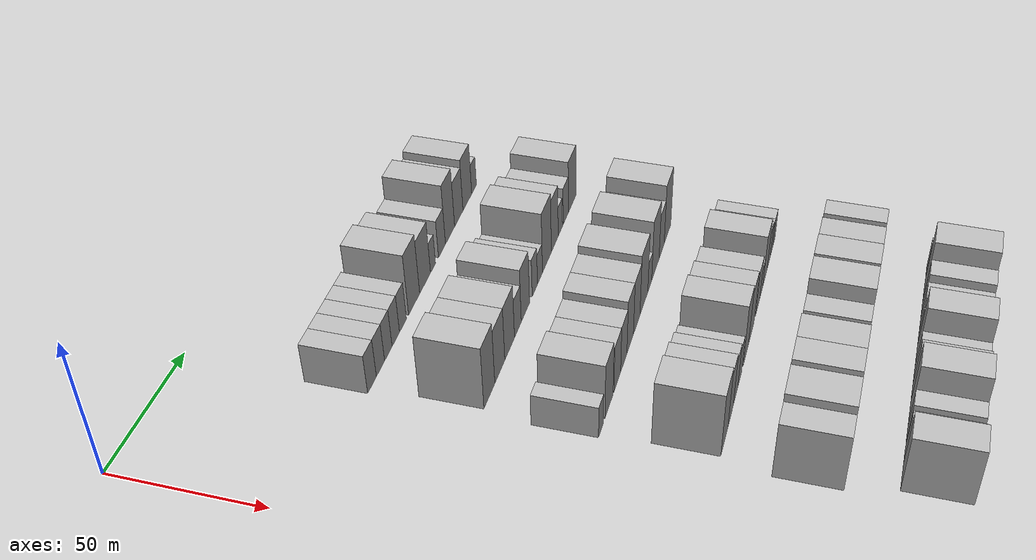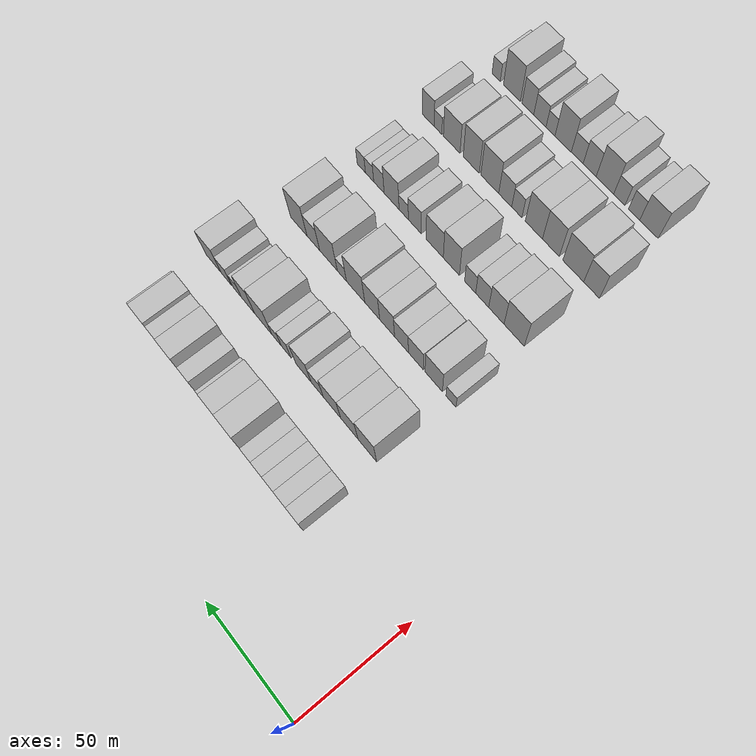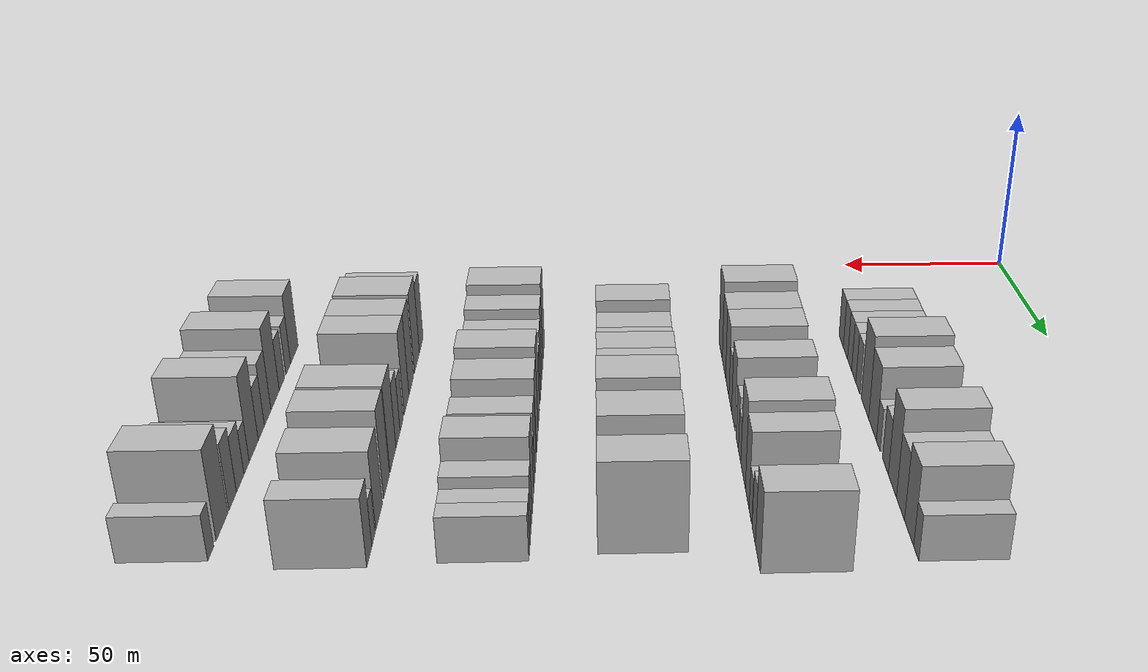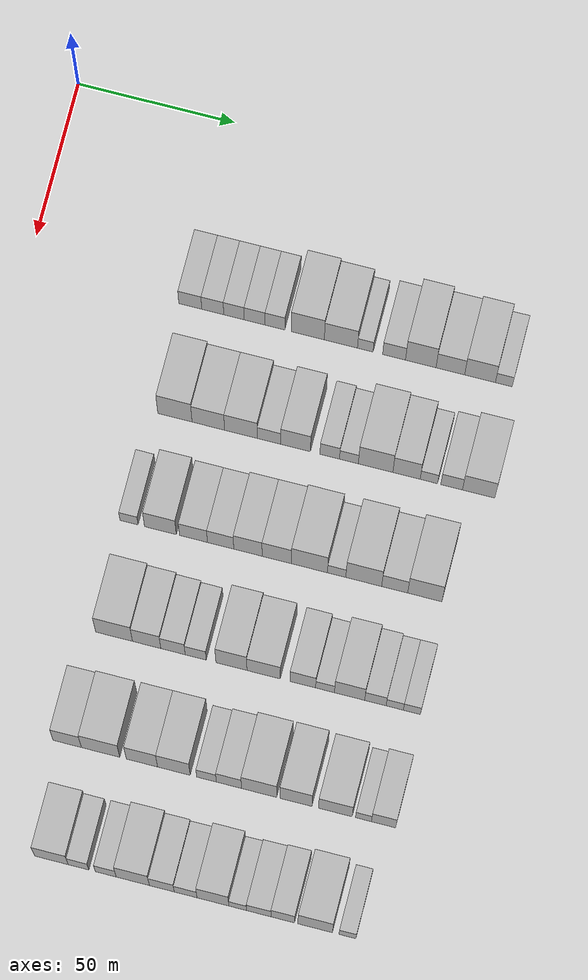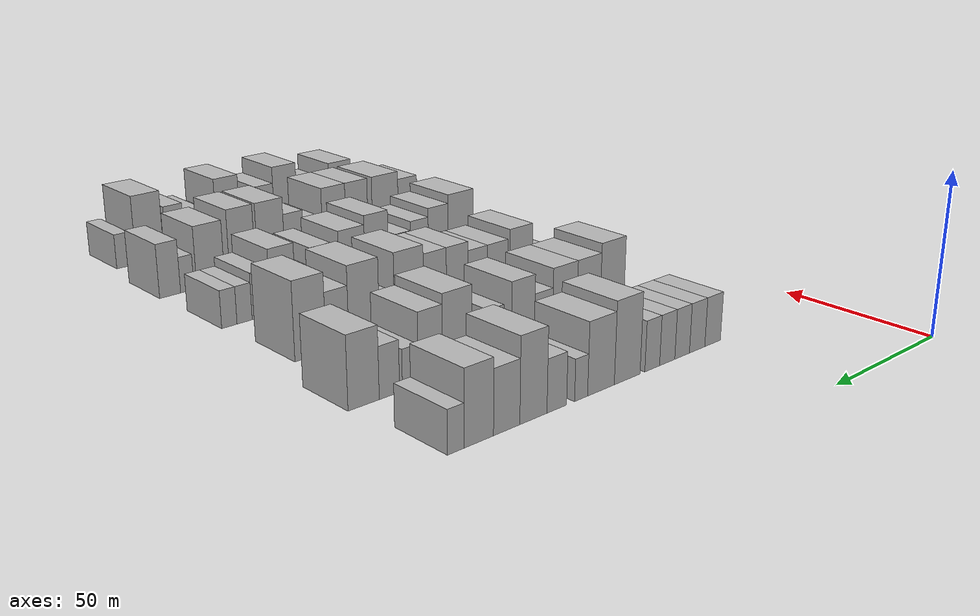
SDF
<sdf version="1.6">
 <world name="default">
  <model name="building_74">
   <static>1</static>
   <pose>50.0000 51.4903 0 0.000000 0.000000 0.000000</pose>
   <link name="link">
    <pose>0 0 7.50 0 0 0</pose>
    <collision name="collision"><geometry><box><size>20.0000 7.2526 15.0000</size></box></geometry></collision>
    <visual name="visual">
     <cast_shadows>0</cast_shadows>
     <geometry><box><size>20.0000 7.2526 15.0000</size></box></geometry>
     <material>
      <script>
       <uri>model://HANNAS_wall/materials/scripts</uri>
       <uri>model://HANNAS_wall/materials/textures</uri>
       <name>vrc/HANNAS_wall</name>
      </script>
     </material>
    </visual>
   </link>
  </model>
  <model name="building_75">
   <static>1</static>
   <pose>50.0000 58.5989 0 0.000000 0.000000 0.000000</pose>
   <link name="link">
    <pose>0 0 7.50 0 0 0</pose>
    <collision name="collision"><geometry><box><size>20.0000 6.9646 15.0000</size></box></geometry></collision>
    <visual name="visual">
     <cast_shadows>0</cast_shadows>
     <geometry><box><size>20.0000 6.9646 15.0000</size></box></geometry>
     <material>
      <script>
       <uri>model://HANNAS_wall/materials/scripts</uri>
       <uri>model://HANNAS_wall/materials/textures</uri>
       <name>vrc/HANNAS_wall</name>
      </script>
     </material>
    </visual>
   </link>
  </model>
  <model name="building_76">
   <static>1</static>
   <pose>50.0000 65.3261 0 0.000000 0.000000 0.000000</pose>
   <link name="link">
    <pose>0 0 7.50 0 0 0</pose>
    <collision name="collision"><geometry><box><size>20.0000 6.4899 15.0000</size></box></geometry></collision>
    <visual name="visual">
     <cast_shadows>0</cast_shadows>
     <geometry><box><size>20.0000 6.4899 15.0000</size></box></geometry>
     <material>
      <script>
       <uri>model://HANNAS_wall/materials/scripts</uri>
       <uri>model://HANNAS_wall/materials/textures</uri>
       <name>vrc/HANNAS_wall</name>
      </script>
     </material>
    </visual>
   </link>
  </model>
  <model name="building_77">
   <static>1</static>
   <pose>50.0000 71.8631 0 0.000000 0.000000 0.000000</pose>
   <link name="link">
    <pose>0 0 7.50 0 0 0</pose>
    <collision name="collision"><geometry><box><size>20.0000 6.5840 15.0000</size></box></geometry></collision>
    <visual name="visual">
     <cast_shadows>0</cast_shadows>
     <geometry><box><size>20.0000 6.5840 15.0000</size></box></geometry>
     <material>
      <script>
       <uri>model://HANNAS_wall/materials/scripts</uri>
       <uri>model://HANNAS_wall/materials/textures</uri>
       <name>vrc/HANNAS_wall</name>
      </script>
     </material>
    </visual>
   </link>
  </model>
  <model name="building_78">
   <static>1</static>
   <pose>50.0000 78.2737 0 0.000000 0.000000 0.000000</pose>
   <link name="link">
    <pose>0 0 7.50 0 0 0</pose>
    <collision name="collision"><geometry><box><size>20.0000 6.2373 15.0000</size></box></geometry></collision>
    <visual name="visual">
     <cast_shadows>0</cast_shadows>
     <geometry><box><size>20.0000 6.2373 15.0000</size></box></geometry>
     <material>
      <script>
       <uri>model://HANNAS_wall/materials/scripts</uri>
       <uri>model://HANNAS_wall/materials/textures</uri>
       <name>vrc/HANNAS_wall</name>
      </script>
     </material>
    </visual>
   </link>
  </model>
  <model name="building_79">
   <static>1</static>
   <pose>50.0000 88.6288 0 0.000000 0.000000 0.000000</pose>
   <link name="link">
    <pose>0 0 12.00 0 0 0</pose>
    <collision name="collision"><geometry><box><size>20.0000 10.4730 24.0000</size></box></geometry></collision>
    <visual name="visual">
     <cast_shadows>0</cast_shadows>
     <geometry><box><size>20.0000 10.4730 24.0000</size></box></geometry>
     <material>
      <script>
       <uri>model://HANNAS_wall/materials/scripts</uri>
       <uri>model://HANNAS_wall/materials/textures</uri>
       <name>vrc/HANNAS_wall</name>
      </script>
     </material>
    </visual>
   </link>
  </model>
  <model name="building_80">
   <static>1</static>
   <pose>50.0000 99.0919 0 0.000000 0.000000 0.000000</pose>
   <link name="link">
    <pose>0 0 10.50 0 0 0</pose>
    <collision name="collision"><geometry><box><size>20.0000 10.4533 21.0000</size></box></geometry></collision>
    <visual name="visual">
     <cast_shadows>0</cast_shadows>
     <geometry><box><size>20.0000 10.4533 21.0000</size></box></geometry>
     <material>
      <script>
       <uri>model://HANNAS_wall/materials/scripts</uri>
       <uri>model://HANNAS_wall/materials/textures</uri>
       <name>vrc/HANNAS_wall</name>
      </script>
     </material>
    </visual>
   </link>
  </model>
  <model name="building_81">
   <static>1</static>
   <pose>50.0000 106.7814 0 0.000000 0.000000 0.000000</pose>
   <link name="link">
    <pose>0 0 6.00 0 0 0</pose>
    <collision name="collision"><geometry><box><size>20.0000 4.9256 12.0000</size></box></geometry></collision>
    <visual name="visual">
     <cast_shadows>0</cast_shadows>
     <geometry><box><size>20.0000 4.9256 12.0000</size></box></geometry>
     <material>
      <script>
       <uri>model://HANNAS_wall/materials/scripts</uri>
       <uri>model://HANNAS_wall/materials/textures</uri>
       <name>vrc/HANNAS_wall</name>
      </script>
     </material>
    </visual>
   </link>
  </model>
  <model name="building_82">
   <static>1</static>
   <pose>50.0000 115.8410 0 0.000000 0.000000 0.000000</pose>
   <link name="link">
    <pose>0 0 7.50 0 0 0</pose>
    <collision name="collision"><geometry><box><size>20.0000 7.1937 15.0000</size></box></geometry></collision>
    <visual name="visual">
     <cast_shadows>0</cast_shadows>
     <geometry><box><size>20.0000 7.1937 15.0000</size></box></geometry>
     <material>
      <script>
       <uri>model://HANNAS_wall/materials/scripts</uri>
       <uri>model://HANNAS_wall/materials/textures</uri>
       <name>vrc/HANNAS_wall</name>
      </script>
     </material>
    </visual>
   </link>
  </model>
  <model name="building_83">
   <static>1</static>
   <pose>50.0000 124.2421 0 0.000000 0.000000 0.000000</pose>
   <link name="link">
    <pose>0 0 12.00 0 0 0</pose>
    <collision name="collision"><geometry><box><size>20.0000 9.6085 24.0000</size></box></geometry></collision>
    <visual name="visual">
     <cast_shadows>0</cast_shadows>
     <geometry><box><size>20.0000 9.6085 24.0000</size></box></geometry>
     <material>
      <script>
       <uri>model://HANNAS_wall/materials/scripts</uri>
       <uri>model://HANNAS_wall/materials/textures</uri>
       <name>vrc/HANNAS_wall</name>
      </script>
     </material>
    </visual>
   </link>
  </model>
  <model name="building_84">
   <static>1</static>
   <pose>50.0000 133.5461 0 0.000000 0.000000 0.000000</pose>
   <link name="link">
    <pose>0 0 9.00 0 0 0</pose>
    <collision name="collision"><geometry><box><size>20.0000 8.9996 18.0000</size></box></geometry></collision>
    <visual name="visual">
     <cast_shadows>0</cast_shadows>
     <geometry><box><size>20.0000 8.9996 18.0000</size></box></geometry>
     <material>
      <script>
       <uri>model://HANNAS_wall/materials/scripts</uri>
       <uri>model://HANNAS_wall/materials/textures</uri>
       <name>vrc/HANNAS_wall</name>
      </script>
     </material>
    </visual>
   </link>
  </model>
  <model name="building_85">
   <static>1</static>
   <pose>50.0000 142.8715 0 0.000000 0.000000 0.000000</pose>
   <link name="link">
    <pose>0 0 10.50 0 0 0</pose>
    <collision name="collision"><geometry><box><size>20.0000 9.6512 21.0000</size></box></geometry></collision>
    <visual name="visual">
     <cast_shadows>0</cast_shadows>
     <geometry><box><size>20.0000 9.6512 21.0000</size></box></geometry>
     <material>
      <script>
       <uri>model://HANNAS_wall/materials/scripts</uri>
       <uri>model://HANNAS_wall/materials/textures</uri>
       <name>vrc/HANNAS_wall</name>
      </script>
     </material>
    </visual>
   </link>
  </model>
  <model name="building_86">
   <static>1</static>
   <pose>50.0000 150.3510 0 0.000000 0.000000 0.000000</pose>
   <link name="link">
    <pose>0 0 6.00 0 0 0</pose>
    <collision name="collision"><geometry><box><size>20.0000 5.3077 12.0000</size></box></geometry></collision>
    <visual name="visual">
     <cast_shadows>0</cast_shadows>
     <geometry><box><size>20.0000 5.3077 12.0000</size></box></geometry>
     <material>
      <script>
       <uri>model://HANNAS_wall/materials/scripts</uri>
       <uri>model://HANNAS_wall/materials/textures</uri>
       <name>vrc/HANNAS_wall</name>
      </script>
     </material>
    </visual>
   </link>
  </model>
  <model name="building_204">
   <static>1</static>
   <pose>85.0000 55.8395 0 0.000000 0.000000 0.000000</pose>
   <link name="link">
    <pose>0 0 12.00 0 0 0</pose>
    <collision name="collision"><geometry><box><size>20.0000 10.7652 24.0000</size></box></geometry></collision>
    <visual name="visual">
     <cast_shadows>0</cast_shadows>
     <geometry><box><size>20.0000 10.7652 24.0000</size></box></geometry>
     <material>
      <script>
       <uri>model://HANNAS_wall/materials/scripts</uri>
       <uri>model://HANNAS_wall/materials/textures</uri>
       <name>vrc/HANNAS_wall</name>
      </script>
     </material>
    </visual>
   </link>
  </model>
  <model name="building_205">
   <static>1</static>
   <pose>85.0000 66.3315 0 0.000000 0.000000 0.000000</pose>
   <link name="link">
    <pose>0 0 10.50 0 0 0</pose>
    <collision name="collision"><geometry><box><size>20.0000 10.2188 21.0000</size></box></geometry></collision>
    <visual name="visual">
     <cast_shadows>0</cast_shadows>
     <geometry><box><size>20.0000 10.2188 21.0000</size></box></geometry>
     <material>
      <script>
       <uri>model://HANNAS_wall/materials/scripts</uri>
       <uri>model://HANNAS_wall/materials/textures</uri>
       <name>vrc/HANNAS_wall</name>
      </script>
     </material>
    </visual>
   </link>
  </model>
  <model name="building_206">
   <static>1</static>
   <pose>85.0000 76.5925 0 0.000000 0.000000 0.000000</pose>
   <link name="link">
    <pose>0 0 10.50 0 0 0</pose>
    <collision name="collision"><geometry><box><size>20.0000 10.3032 21.0000</size></box></geometry></collision>
    <visual name="visual">
     <cast_shadows>0</cast_shadows>
     <geometry><box><size>20.0000 10.3032 21.0000</size></box></geometry>
     <material>
      <script>
       <uri>model://HANNAS_wall/materials/scripts</uri>
       <uri>model://HANNAS_wall/materials/textures</uri>
       <name>vrc/HANNAS_wall</name>
      </script>
     </material>
    </visual>
   </link>
  </model>
  <model name="building_207">
   <static>1</static>
   <pose>85.0000 85.4170 0 0.000000 0.000000 0.000000</pose>
   <link name="link">
    <pose>0 0 7.50 0 0 0</pose>
    <collision name="collision"><geometry><box><size>20.0000 7.3458 15.0000</size></box></geometry></collision>
    <visual name="visual">
     <cast_shadows>0</cast_shadows>
     <geometry><box><size>20.0000 7.3458 15.0000</size></box></geometry>
     <material>
      <script>
       <uri>model://HANNAS_wall/materials/scripts</uri>
       <uri>model://HANNAS_wall/materials/textures</uri>
       <name>vrc/HANNAS_wall</name>
      </script>
     </material>
    </visual>
   </link>
  </model>
  <model name="building_208">
   <static>1</static>
   <pose>85.0000 93.7488 0 0.000000 0.000000 0.000000</pose>
   <link name="link">
    <pose>0 0 10.50 0 0 0</pose>
    <collision name="collision"><geometry><box><size>20.0000 9.3177 21.0000</size></box></geometry></collision>
    <visual name="visual">
     <cast_shadows>0</cast_shadows>
     <geometry><box><size>20.0000 9.3177 21.0000</size></box></geometry>
     <material>
      <script>
       <uri>model://HANNAS_wall/materials/scripts</uri>
       <uri>model://HANNAS_wall/materials/textures</uri>
       <name>vrc/HANNAS_wall</name>
      </script>
     </material>
    </visual>
   </link>
  </model>
  <model name="building_209">
   <static>1</static>
   <pose>85.0000 104.4710 0 0.000000 0.000000 0.000000</pose>
   <link name="link">
    <pose>0 0 7.50 0 0 0</pose>
    <collision name="collision"><geometry><box><size>20.0000 6.1268 15.0000</size></box></geometry></collision>
    <visual name="visual">
     <cast_shadows>0</cast_shadows>
     <geometry><box><size>20.0000 6.1268 15.0000</size></box></geometry>
     <material>
      <script>
       <uri>model://HANNAS_wall/materials/scripts</uri>
       <uri>model://HANNAS_wall/materials/textures</uri>
       <name>vrc/HANNAS_wall</name>
      </script>
     </material>
    </visual>
   </link>
  </model>
  <model name="building_210">
   <static>1</static>
   <pose>85.0000 110.4911 0 0.000000 0.000000 0.000000</pose>
   <link name="link">
    <pose>0 0 6.00 0 0 0</pose>
    <collision name="collision"><geometry><box><size>20.0000 5.9133 12.0000</size></box></geometry></collision>
    <visual name="visual">
     <cast_shadows>0</cast_shadows>
     <geometry><box><size>20.0000 5.9133 12.0000</size></box></geometry>
     <material>
      <script>
       <uri>model://HANNAS_wall/materials/scripts</uri>
       <uri>model://HANNAS_wall/materials/textures</uri>
       <name>vrc/HANNAS_wall</name>
      </script>
     </material>
    </visual>
   </link>
  </model>
  <model name="building_211">
   <static>1</static>
   <pose>85.0000 118.8530 0 0.000000 0.000000 0.000000</pose>
   <link name="link">
    <pose>0 0 12.00 0 0 0</pose>
    <collision name="collision"><geometry><box><size>20.0000 10.8106 24.0000</size></box></geometry></collision>
    <visual name="visual">
     <cast_shadows>0</cast_shadows>
     <geometry><box><size>20.0000 10.8106 24.0000</size></box></geometry>
     <material>
      <script>
       <uri>model://HANNAS_wall/materials/scripts</uri>
       <uri>model://HANNAS_wall/materials/textures</uri>
       <name>vrc/HANNAS_wall</name>
      </script>
     </material>
    </visual>
   </link>
  </model>
  <model name="building_212">
   <static>1</static>
   <pose>85.0000 128.5268 0 0.000000 0.000000 0.000000</pose>
   <link name="link">
    <pose>0 0 10.50 0 0 0</pose>
    <collision name="collision"><geometry><box><size>20.0000 8.5368 21.0000</size></box></geometry></collision>
    <visual name="visual">
     <cast_shadows>0</cast_shadows>
     <geometry><box><size>20.0000 8.5368 21.0000</size></box></geometry>
     <material>
      <script>
       <uri>model://HANNAS_wall/materials/scripts</uri>
       <uri>model://HANNAS_wall/materials/textures</uri>
       <name>vrc/HANNAS_wall</name>
      </script>
     </material>
    </visual>
   </link>
  </model>
  <model name="building_213">
   <static>1</static>
   <pose>85.0000 135.5194 0 0.000000 0.000000 0.000000</pose>
   <link name="link">
    <pose>0 0 6.00 0 0 0</pose>
    <collision name="collision"><geometry><box><size>20.0000 5.4485 12.0000</size></box></geometry></collision>
    <visual name="visual">
     <cast_shadows>0</cast_shadows>
     <geometry><box><size>20.0000 5.4485 12.0000</size></box></geometry>
     <material>
      <script>
       <uri>model://HANNAS_wall/materials/scripts</uri>
       <uri>model://HANNAS_wall/materials/textures</uri>
       <name>vrc/HANNAS_wall</name>
      </script>
     </material>
    </visual>
   </link>
  </model>
  <model name="building_214">
   <static>1</static>
   <pose>85.0000 142.6337 0 0.000000 0.000000 0.000000</pose>
   <link name="link">
    <pose>0 0 7.50 0 0 0</pose>
    <collision name="collision"><geometry><box><size>20.0000 6.7801 15.0000</size></box></geometry></collision>
    <visual name="visual">
     <cast_shadows>0</cast_shadows>
     <geometry><box><size>20.0000 6.7801 15.0000</size></box></geometry>
     <material>
      <script>
       <uri>model://HANNAS_wall/materials/scripts</uri>
       <uri>model://HANNAS_wall/materials/textures</uri>
       <name>vrc/HANNAS_wall</name>
      </script>
     </material>
    </visual>
   </link>
  </model>
  <model name="building_215">
   <static>1</static>
   <pose>85.0000 151.0906 0 0.000000 0.000000 0.000000</pose>
   <link name="link">
    <pose>0 0 10.50 0 0 0</pose>
    <collision name="collision"><geometry><box><size>20.0000 10.1337 21.0000</size></box></geometry></collision>
    <visual name="visual">
     <cast_shadows>0</cast_shadows>
     <geometry><box><size>20.0000 10.1337 21.0000</size></box></geometry>
     <material>
      <script>
       <uri>model://HANNAS_wall/materials/scripts</uri>
       <uri>model://HANNAS_wall/materials/textures</uri>
       <name>vrc/HANNAS_wall</name>
      </script>
     </material>
    </visual>
   </link>
  </model>
  <model name="building_336">
   <static>1</static>
   <pose>120.0000 50.6702 0 0.000000 0.000000 0.000000</pose>
   <link name="link">
    <pose>0 0 6.00 0 0 0</pose>
    <collision name="collision"><geometry><box><size>20.0000 5.6879 12.0000</size></box></geometry></collision>
    <visual name="visual">
     <cast_shadows>0</cast_shadows>
     <geometry><box><size>20.0000 5.6879 12.0000</size></box></geometry>
     <material>
      <script>
       <uri>model://HANNAS_wall/materials/scripts</uri>
       <uri>model://HANNAS_wall/materials/textures</uri>
       <name>vrc/HANNAS_wall</name>
      </script>
     </material>
    </visual>
   </link>
  </model>
  <model name="building_337">
   <static>1</static>
   <pose>120.0000 60.4930 0 0.000000 0.000000 0.000000</pose>
   <link name="link">
    <pose>0 0 10.50 0 0 0</pose>
    <collision name="collision"><geometry><box><size>20.0000 9.9576 21.0000</size></box></geometry></collision>
    <visual name="visual">
     <cast_shadows>0</cast_shadows>
     <geometry><box><size>20.0000 9.9576 21.0000</size></box></geometry>
     <material>
      <script>
       <uri>model://HANNAS_wall/materials/scripts</uri>
       <uri>model://HANNAS_wall/materials/textures</uri>
       <name>vrc/HANNAS_wall</name>
      </script>
     </material>
    </visual>
   </link>
  </model>
  <model name="building_338">
   <static>1</static>
   <pose>120.0000 70.8343 0 0.000000 0.000000 0.000000</pose>
   <link name="link">
    <pose>0 0 9.00 0 0 0</pose>
    <collision name="collision"><geometry><box><size>20.0000 8.7252 18.0000</size></box></geometry></collision>
    <visual name="visual">
     <cast_shadows>0</cast_shadows>
     <geometry><box><size>20.0000 8.7252 18.0000</size></box></geometry>
     <material>
      <script>
       <uri>model://HANNAS_wall/materials/scripts</uri>
       <uri>model://HANNAS_wall/materials/textures</uri>
       <name>vrc/HANNAS_wall</name>
      </script>
     </material>
    </visual>
   </link>
  </model>
  <model name="building_339">
   <static>1</static>
   <pose>120.0000 79.3093 0 0.000000 0.000000 0.000000</pose>
   <link name="link">
    <pose>0 0 9.00 0 0 0</pose>
    <collision name="collision"><geometry><box><size>20.0000 8.2247 18.0000</size></box></geometry></collision>
    <visual name="visual">
     <cast_shadows>0</cast_shadows>
     <geometry><box><size>20.0000 8.2247 18.0000</size></box></geometry>
     <material>
      <script>
       <uri>model://HANNAS_wall/materials/scripts</uri>
       <uri>model://HANNAS_wall/materials/textures</uri>
       <name>vrc/HANNAS_wall</name>
      </script>
     </material>
    </visual>
   </link>
  </model>
  <model name="building_340">
   <static>1</static>
   <pose>120.0000 87.8554 0 0.000000 0.000000 0.000000</pose>
   <link name="link">
    <pose>0 0 10.50 0 0 0</pose>
    <collision name="collision"><geometry><box><size>20.0000 8.8675 21.0000</size></box></geometry></collision>
    <visual name="visual">
     <cast_shadows>0</cast_shadows>
     <geometry><box><size>20.0000 8.8675 21.0000</size></box></geometry>
     <material>
      <script>
       <uri>model://HANNAS_wall/materials/scripts</uri>
       <uri>model://HANNAS_wall/materials/textures</uri>
       <name>vrc/HANNAS_wall</name>
      </script>
     </material>
    </visual>
   </link>
  </model>
  <model name="building_341">
   <static>1</static>
   <pose>120.0000 96.8437 0 0.000000 0.000000 0.000000</pose>
   <link name="link">
    <pose>0 0 10.50 0 0 0</pose>
    <collision name="collision"><geometry><box><size>20.0000 9.1092 21.0000</size></box></geometry></collision>
    <visual name="visual">
     <cast_shadows>0</cast_shadows>
     <geometry><box><size>20.0000 9.1092 21.0000</size></box></geometry>
     <material>
      <script>
       <uri>model://HANNAS_wall/materials/scripts</uri>
       <uri>model://HANNAS_wall/materials/textures</uri>
       <name>vrc/HANNAS_wall</name>
      </script>
     </material>
    </visual>
   </link>
  </model>
  <model name="building_342">
   <static>1</static>
   <pose>120.0000 107.0332 0 0.000000 0.000000 0.000000</pose>
   <link name="link">
    <pose>0 0 12.00 0 0 0</pose>
    <collision name="collision"><geometry><box><size>20.0000 11.2698 24.0000</size></box></geometry></collision>
    <visual name="visual">
     <cast_shadows>0</cast_shadows>
     <geometry><box><size>20.0000 11.2698 24.0000</size></box></geometry>
     <material>
      <script>
       <uri>model://HANNAS_wall/materials/scripts</uri>
       <uri>model://HANNAS_wall/materials/textures</uri>
       <name>vrc/HANNAS_wall</name>
      </script>
     </material>
    </visual>
   </link>
  </model>
  <model name="building_343">
   <static>1</static>
   <pose>120.0000 115.5310 0 0.000000 0.000000 0.000000</pose>
   <link name="link">
    <pose>0 0 6.00 0 0 0</pose>
    <collision name="collision"><geometry><box><size>20.0000 5.7258 12.0000</size></box></geometry></collision>
    <visual name="visual">
     <cast_shadows>0</cast_shadows>
     <geometry><box><size>20.0000 5.7258 12.0000</size></box></geometry>
     <material>
      <script>
       <uri>model://HANNAS_wall/materials/scripts</uri>
       <uri>model://HANNAS_wall/materials/textures</uri>
       <name>vrc/HANNAS_wall</name>
      </script>
     </material>
    </visual>
   </link>
  </model>
  <model name="building_344">
   <static>1</static>
   <pose>120.0000 123.9798 0 0.000000 0.000000 0.000000</pose>
   <link name="link">
    <pose>0 0 12.00 0 0 0</pose>
    <collision name="collision"><geometry><box><size>20.0000 11.1717 24.0000</size></box></geometry></collision>
    <visual name="visual">
     <cast_shadows>0</cast_shadows>
     <geometry><box><size>20.0000 11.1717 24.0000</size></box></geometry>
     <material>
      <script>
       <uri>model://HANNAS_wall/materials/scripts</uri>
       <uri>model://HANNAS_wall/materials/textures</uri>
       <name>vrc/HANNAS_wall</name>
      </script>
     </material>
    </visual>
   </link>
  </model>
  <model name="building_345">
   <static>1</static>
   <pose>120.0000 133.6159 0 0.000000 0.000000 0.000000</pose>
   <link name="link">
    <pose>0 0 9.00 0 0 0</pose>
    <collision name="collision"><geometry><box><size>20.0000 8.1004 18.0000</size></box></geometry></collision>
    <visual name="visual">
     <cast_shadows>0</cast_shadows>
     <geometry><box><size>20.0000 8.1004 18.0000</size></box></geometry>
     <material>
      <script>
       <uri>model://HANNAS_wall/materials/scripts</uri>
       <uri>model://HANNAS_wall/materials/textures</uri>
       <name>vrc/HANNAS_wall</name>
      </script>
     </material>
    </visual>
   </link>
  </model>
  <model name="building_346">
   <static>1</static>
   <pose>120.0000 142.9902 0 0.000000 0.000000 0.000000</pose>
   <link name="link">
    <pose>0 0 12.00 0 0 0</pose>
    <collision name="collision"><geometry><box><size>20.0000 10.6483 24.0000</size></box></geometry></collision>
    <visual name="visual">
     <cast_shadows>0</cast_shadows>
     <geometry><box><size>20.0000 10.6483 24.0000</size></box></geometry>
     <material>
      <script>
       <uri>model://HANNAS_wall/materials/scripts</uri>
       <uri>model://HANNAS_wall/materials/textures</uri>
       <name>vrc/HANNAS_wall</name>
      </script>
     </material>
    </visual>
   </link>
  </model>
  <model name="building_467">
   <static>1</static>
   <pose>155.0000 55.2761 0 0.000000 0.000000 0.000000</pose>
   <link name="link">
    <pose>0 0 12.00 0 0 0</pose>
    <collision name="collision"><geometry><box><size>20.0000 11.4884 24.0000</size></box></geometry></collision>
    <visual name="visual">
     <cast_shadows>0</cast_shadows>
     <geometry><box><size>20.0000 11.4884 24.0000</size></box></geometry>
     <material>
      <script>
       <uri>model://HANNAS_wall/materials/scripts</uri>
       <uri>model://HANNAS_wall/materials/textures</uri>
       <name>vrc/HANNAS_wall</name>
      </script>
     </material>
    </visual>
   </link>
  </model>
  <model name="building_468">
   <static>1</static>
   <pose>155.0000 65.4276 0 0.000000 0.000000 0.000000</pose>
   <link name="link">
    <pose>0 0 10.50 0 0 0</pose>
    <collision name="collision"><geometry><box><size>20.0000 8.8146 21.0000</size></box></geometry></collision>
    <visual name="visual">
     <cast_shadows>0</cast_shadows>
     <geometry><box><size>20.0000 8.8146 21.0000</size></box></geometry>
     <material>
      <script>
       <uri>model://HANNAS_wall/materials/scripts</uri>
       <uri>model://HANNAS_wall/materials/textures</uri>
       <name>vrc/HANNAS_wall</name>
      </script>
     </material>
    </visual>
   </link>
  </model>
  <model name="building_469">
   <static>1</static>
   <pose>155.0000 73.6305 0 0.000000 0.000000 0.000000</pose>
   <link name="link">
    <pose>0 0 9.00 0 0 0</pose>
    <collision name="collision"><geometry><box><size>20.0000 7.5911 18.0000</size></box></geometry></collision>
    <visual name="visual">
     <cast_shadows>0</cast_shadows>
     <geometry><box><size>20.0000 7.5911 18.0000</size></box></geometry>
     <material>
      <script>
       <uri>model://HANNAS_wall/materials/scripts</uri>
       <uri>model://HANNAS_wall/materials/textures</uri>
       <name>vrc/HANNAS_wall</name>
      </script>
     </material>
    </visual>
   </link>
  </model>
  <model name="building_470">
   <static>1</static>
   <pose>155.0000 80.6976 0 0.000000 0.000000 0.000000</pose>
   <link name="link">
    <pose>0 0 7.50 0 0 0</pose>
    <collision name="collision"><geometry><box><size>20.0000 6.5431 15.0000</size></box></geometry></collision>
    <visual name="visual">
     <cast_shadows>0</cast_shadows>
     <geometry><box><size>20.0000 6.5431 15.0000</size></box></geometry>
     <material>
      <script>
       <uri>model://HANNAS_wall/materials/scripts</uri>
       <uri>model://HANNAS_wall/materials/textures</uri>
       <name>vrc/HANNAS_wall</name>
      </script>
     </material>
    </visual>
   </link>
  </model>
  <model name="building_471">
   <static>1</static>
   <pose>155.0000 91.7879 0 0.000000 0.000000 0.000000</pose>
   <link name="link">
    <pose>0 0 12.00 0 0 0</pose>
    <collision name="collision"><geometry><box><size>20.0000 9.6375 24.0000</size></box></geometry></collision>
    <visual name="visual">
     <cast_shadows>0</cast_shadows>
     <geometry><box><size>20.0000 9.6375 24.0000</size></box></geometry>
     <material>
      <script>
       <uri>model://HANNAS_wall/materials/scripts</uri>
       <uri>model://HANNAS_wall/materials/textures</uri>
       <name>vrc/HANNAS_wall</name>
      </script>
     </material>
    </visual>
   </link>
  </model>
  <model name="building_472">
   <static>1</static>
   <pose>155.0000 101.7879 0 0.000000 0.000000 0.000000</pose>
   <link name="link">
    <pose>0 0 10.50 0 0 0</pose>
    <collision name="collision"><geometry><box><size>20.0000 10.3624 21.0000</size></box></geometry></collision>
    <visual name="visual">
     <cast_shadows>0</cast_shadows>
     <geometry><box><size>20.0000 10.3624 21.0000</size></box></geometry>
     <material>
      <script>
       <uri>model://HANNAS_wall/materials/scripts</uri>
       <uri>model://HANNAS_wall/materials/textures</uri>
       <name>vrc/HANNAS_wall</name>
      </script>
     </material>
    </visual>
   </link>
  </model>
  <model name="building_473">
   <static>1</static>
   <pose>155.0000 113.9414 0 0.000000 0.000000 0.000000</pose>
   <link name="link">
    <pose>0 0 9.00 0 0 0</pose>
    <collision name="collision"><geometry><box><size>20.0000 7.9447 18.0000</size></box></geometry></collision>
    <visual name="visual">
     <cast_shadows>0</cast_shadows>
     <geometry><box><size>20.0000 7.9447 18.0000</size></box></geometry>
     <material>
      <script>
       <uri>model://HANNAS_wall/materials/scripts</uri>
       <uri>model://HANNAS_wall/materials/textures</uri>
       <name>vrc/HANNAS_wall</name>
      </script>
     </material>
    </visual>
   </link>
  </model>
  <model name="building_474">
   <static>1</static>
   <pose>155.0000 120.8387 0 0.000000 0.000000 0.000000</pose>
   <link name="link">
    <pose>0 0 6.00 0 0 0</pose>
    <collision name="collision"><geometry><box><size>20.0000 5.8499 12.0000</size></box></geometry></collision>
    <visual name="visual">
     <cast_shadows>0</cast_shadows>
     <geometry><box><size>20.0000 5.8499 12.0000</size></box></geometry>
     <material>
      <script>
       <uri>model://HANNAS_wall/materials/scripts</uri>
       <uri>model://HANNAS_wall/materials/textures</uri>
       <name>vrc/HANNAS_wall</name>
      </script>
     </material>
    </visual>
   </link>
  </model>
  <model name="building_475">
   <static>1</static>
   <pose>155.0000 128.4473 0 0.000000 0.000000 0.000000</pose>
   <link name="link">
    <pose>0 0 10.50 0 0 0</pose>
    <collision name="collision"><geometry><box><size>20.0000 9.3673 21.0000</size></box></geometry></collision>
    <visual name="visual">
     <cast_shadows>0</cast_shadows>
     <geometry><box><size>20.0000 9.3673 21.0000</size></box></geometry>
     <material>
      <script>
       <uri>model://HANNAS_wall/materials/scripts</uri>
       <uri>model://HANNAS_wall/materials/textures</uri>
       <name>vrc/HANNAS_wall</name>
      </script>
     </material>
    </visual>
   </link>
  </model>
  <model name="building_476">
   <static>1</static>
   <pose>155.0000 136.4382 0 0.000000 0.000000 0.000000</pose>
   <link name="link">
    <pose>0 0 7.50 0 0 0</pose>
    <collision name="collision"><geometry><box><size>20.0000 6.6146 15.0000</size></box></geometry></collision>
    <visual name="visual">
     <cast_shadows>0</cast_shadows>
     <geometry><box><size>20.0000 6.6146 15.0000</size></box></geometry>
     <material>
      <script>
       <uri>model://HANNAS_wall/materials/scripts</uri>
       <uri>model://HANNAS_wall/materials/textures</uri>
       <name>vrc/HANNAS_wall</name>
      </script>
     </material>
    </visual>
   </link>
  </model>
  <model name="building_477">
   <static>1</static>
   <pose>155.0000 142.4132 0 0.000000 0.000000 0.000000</pose>
   <link name="link">
    <pose>0 0 6.00 0 0 0</pose>
    <collision name="collision"><geometry><box><size>20.0000 5.3354 12.0000</size></box></geometry></collision>
    <visual name="visual">
     <cast_shadows>0</cast_shadows>
     <geometry><box><size>20.0000 5.3354 12.0000</size></box></geometry>
     <material>
      <script>
       <uri>model://HANNAS_wall/materials/scripts</uri>
       <uri>model://HANNAS_wall/materials/textures</uri>
       <name>vrc/HANNAS_wall</name>
      </script>
     </material>
    </visual>
   </link>
  </model>
  <model name="building_478">
   <static>1</static>
   <pose>155.0000 147.7262 0 0.000000 0.000000 0.000000</pose>
   <link name="link">
    <pose>0 0 6.00 0 0 0</pose>
    <collision name="collision"><geometry><box><size>20.0000 5.2907 12.0000</size></box></geometry></collision>
    <visual name="visual">
     <cast_shadows>0</cast_shadows>
     <geometry><box><size>20.0000 5.2907 12.0000</size></box></geometry>
     <material>
      <script>
       <uri>model://HANNAS_wall/materials/scripts</uri>
       <uri>model://HANNAS_wall/materials/textures</uri>
       <name>vrc/HANNAS_wall</name>
      </script>
     </material>
    </visual>
   </link>
  </model>
  <model name="building_597">
   <static>1</static>
   <pose>190.0000 50.0871 0 0.000000 0.000000 0.000000</pose>
   <link name="link">
    <pose>0 0 10.50 0 0 0</pose>
    <collision name="collision"><geometry><box><size>20.0000 8.8128 21.0000</size></box></geometry></collision>
    <visual name="visual">
     <cast_shadows>0</cast_shadows>
     <geometry><box><size>20.0000 8.8128 21.0000</size></box></geometry>
     <material>
      <script>
       <uri>model://HANNAS_wall/materials/scripts</uri>
       <uri>model://HANNAS_wall/materials/textures</uri>
       <name>vrc/HANNAS_wall</name>
      </script>
     </material>
    </visual>
   </link>
  </model>
  <model name="building_598">
   <static>1</static>
   <pose>190.0000 60.4288 0 0.000000 0.000000 0.000000</pose>
   <link name="link">
    <pose>0 0 12.00 0 0 0</pose>
    <collision name="collision"><geometry><box><size>20.0000 11.8705 24.0000</size></box></geometry></collision>
    <visual name="visual">
     <cast_shadows>0</cast_shadows>
     <geometry><box><size>20.0000 11.8705 24.0000</size></box></geometry>
     <material>
      <script>
       <uri>model://HANNAS_wall/materials/scripts</uri>
       <uri>model://HANNAS_wall/materials/textures</uri>
       <name>vrc/HANNAS_wall</name>
      </script>
     </material>
    </visual>
   </link>
  </model>
  <model name="building_599">
   <static>1</static>
   <pose>190.0000 73.2236 0 0.000000 0.000000 0.000000</pose>
   <link name="link">
    <pose>0 0 12.00 0 0 0</pose>
    <collision name="collision"><geometry><box><size>20.0000 9.7191 24.0000</size></box></geometry></collision>
    <visual name="visual">
     <cast_shadows>0</cast_shadows>
     <geometry><box><size>20.0000 9.7191 24.0000</size></box></geometry>
     <material>
      <script>
       <uri>model://HANNAS_wall/materials/scripts</uri>
       <uri>model://HANNAS_wall/materials/textures</uri>
       <name>vrc/HANNAS_wall</name>
      </script>
     </material>
    </visual>
   </link>
  </model>
  <model name="building_600">
   <static>1</static>
   <pose>190.0000 83.1176 0 0.000000 0.000000 0.000000</pose>
   <link name="link">
    <pose>0 0 12.00 0 0 0</pose>
    <collision name="collision"><geometry><box><size>20.0000 10.0689 24.0000</size></box></geometry></collision>
    <visual name="visual">
     <cast_shadows>0</cast_shadows>
     <geometry><box><size>20.0000 10.0689 24.0000</size></box></geometry>
     <material>
      <script>
       <uri>model://HANNAS_wall/materials/scripts</uri>
       <uri>model://HANNAS_wall/materials/textures</uri>
       <name>vrc/HANNAS_wall</name>
      </script>
     </material>
    </visual>
   </link>
  </model>
  <model name="building_601">
   <static>1</static>
   <pose>190.0000 93.1867 0 0.000000 0.000000 0.000000</pose>
   <link name="link">
    <pose>0 0 7.50 0 0 0</pose>
    <collision name="collision"><geometry><box><size>20.0000 6.0694 15.0000</size></box></geometry></collision>
    <visual name="visual">
     <cast_shadows>0</cast_shadows>
     <geometry><box><size>20.0000 6.0694 15.0000</size></box></geometry>
     <material>
      <script>
       <uri>model://HANNAS_wall/materials/scripts</uri>
       <uri>model://HANNAS_wall/materials/textures</uri>
       <name>vrc/HANNAS_wall</name>
      </script>
     </material>
    </visual>
   </link>
  </model>
  <model name="building_602">
   <static>1</static>
   <pose>190.0000 100.1120 0 0.000000 0.000000 0.000000</pose>
   <link name="link">
    <pose>0 0 9.00 0 0 0</pose>
    <collision name="collision"><geometry><box><size>20.0000 7.7812 18.0000</size></box></geometry></collision>
    <visual name="visual">
     <cast_shadows>0</cast_shadows>
     <geometry><box><size>20.0000 7.7812 18.0000</size></box></geometry>
     <material>
      <script>
       <uri>model://HANNAS_wall/materials/scripts</uri>
       <uri>model://HANNAS_wall/materials/textures</uri>
       <name>vrc/HANNAS_wall</name>
      </script>
     </material>
    </visual>
   </link>
  </model>
  <model name="building_603">
   <static>1</static>
   <pose>190.0000 109.4195 0 0.000000 0.000000 0.000000</pose>
   <link name="link">
    <pose>0 0 12.00 0 0 0</pose>
    <collision name="collision"><geometry><box><size>20.0000 10.8337 24.0000</size></box></geometry></collision>
    <visual name="visual">
     <cast_shadows>0</cast_shadows>
     <geometry><box><size>20.0000 10.8337 24.0000</size></box></geometry>
     <material>
      <script>
       <uri>model://HANNAS_wall/materials/scripts</uri>
       <uri>model://HANNAS_wall/materials/textures</uri>
       <name>vrc/HANNAS_wall</name>
      </script>
     </material>
    </visual>
   </link>
  </model>
  <model name="building_604">
   <static>1</static>
   <pose>190.0000 120.7816 0 0.000000 0.000000 0.000000</pose>
   <link name="link">
    <pose>0 0 12.00 0 0 0</pose>
    <collision name="collision"><geometry><box><size>20.0000 9.8905 24.0000</size></box></geometry></collision>
    <visual name="visual">
     <cast_shadows>0</cast_shadows>
     <geometry><box><size>20.0000 9.8905 24.0000</size></box></geometry>
     <material>
      <script>
       <uri>model://HANNAS_wall/materials/scripts</uri>
       <uri>model://HANNAS_wall/materials/textures</uri>
       <name>vrc/HANNAS_wall</name>
      </script>
     </material>
    </visual>
   </link>
  </model>
  <model name="building_605">
   <static>1</static>
   <pose>190.0000 132.9284 0 0.000000 0.000000 0.000000</pose>
   <link name="link">
    <pose>0 0 10.50 0 0 0</pose>
    <collision name="collision"><geometry><box><size>20.0000 10.4032 21.0000</size></box></geometry></collision>
    <visual name="visual">
     <cast_shadows>0</cast_shadows>
     <geometry><box><size>20.0000 10.4032 21.0000</size></box></geometry>
     <material>
      <script>
       <uri>model://HANNAS_wall/materials/scripts</uri>
       <uri>model://HANNAS_wall/materials/textures</uri>
       <name>vrc/HANNAS_wall</name>
      </script>
     </material>
    </visual>
   </link>
  </model>
  <model name="building_606">
   <static>1</static>
   <pose>190.0000 141.5801 0 0.000000 0.000000 0.000000</pose>
   <link name="link">
    <pose>0 0 6.00 0 0 0</pose>
    <collision name="collision"><geometry><box><size>20.0000 4.9003 12.0000</size></box></geometry></collision>
    <visual name="visual">
     <cast_shadows>0</cast_shadows>
     <geometry><box><size>20.0000 4.9003 12.0000</size></box></geometry>
     <material>
      <script>
       <uri>model://HANNAS_wall/materials/scripts</uri>
       <uri>model://HANNAS_wall/materials/textures</uri>
       <name>vrc/HANNAS_wall</name>
      </script>
     </material>
    </visual>
   </link>
  </model>
  <model name="building_607">
   <static>1</static>
   <pose>190.0000 147.7625 0 0.000000 0.000000 0.000000</pose>
   <link name="link">
    <pose>0 0 9.00 0 0 0</pose>
    <collision name="collision"><geometry><box><size>20.0000 7.4645 18.0000</size></box></geometry></collision>
    <visual name="visual">
     <cast_shadows>0</cast_shadows>
     <geometry><box><size>20.0000 7.4645 18.0000</size></box></geometry>
     <material>
      <script>
       <uri>model://HANNAS_wall/materials/scripts</uri>
       <uri>model://HANNAS_wall/materials/textures</uri>
       <name>vrc/HANNAS_wall</name>
      </script>
     </material>
    </visual>
   </link>
  </model>
  <model name="building_723">
   <static>1</static>
   <pose>225.0000 54.6058 0 0.000000 0.000000 0.000000</pose>
   <link name="link">
    <pose>0 0 10.50 0 0 0</pose>
    <collision name="collision"><geometry><box><size>20.0000 10.3494 21.0000</size></box></geometry></collision>
    <visual name="visual">
     <cast_shadows>0</cast_shadows>
     <geometry><box><size>20.0000 10.3494 21.0000</size></box></geometry>
     <material>
      <script>
       <uri>model://HANNAS_wall/materials/scripts</uri>
       <uri>model://HANNAS_wall/materials/textures</uri>
       <name>vrc/HANNAS_wall</name>
      </script>
     </material>
    </visual>
   </link>
  </model>
  <model name="building_724">
   <static>1</static>
   <pose>225.0000 62.9627 0 0.000000 0.000000 0.000000</pose>
   <link name="link">
    <pose>0 0 7.50 0 0 0</pose>
    <collision name="collision"><geometry><box><size>20.0000 6.3643 15.0000</size></box></geometry></collision>
    <visual name="visual">
     <cast_shadows>0</cast_shadows>
     <geometry><box><size>20.0000 6.3643 15.0000</size></box></geometry>
     <material>
      <script>
       <uri>model://HANNAS_wall/materials/scripts</uri>
       <uri>model://HANNAS_wall/materials/textures</uri>
       <name>vrc/HANNAS_wall</name>
      </script>
     </material>
    </visual>
   </link>
  </model>
  <model name="building_725">
   <static>1</static>
   <pose>225.0000 71.3717 0 0.000000 0.000000 0.000000</pose>
   <link name="link">
    <pose>0 0 7.50 0 0 0</pose>
    <collision name="collision"><geometry><box><size>20.0000 6.4536 15.0000</size></box></geometry></collision>
    <visual name="visual">
     <cast_shadows>0</cast_shadows>
     <geometry><box><size>20.0000 6.4536 15.0000</size></box></geometry>
     <material>
      <script>
       <uri>model://HANNAS_wall/materials/scripts</uri>
       <uri>model://HANNAS_wall/materials/textures</uri>
       <name>vrc/HANNAS_wall</name>
      </script>
     </material>
    </visual>
   </link>
  </model>
  <model name="building_726">
   <static>1</static>
   <pose>225.0000 79.6899 0 0.000000 0.000000 0.000000</pose>
   <link name="link">
    <pose>0 0 12.00 0 0 0</pose>
    <collision name="collision"><geometry><box><size>20.0000 10.1827 24.0000</size></box></geometry></collision>
    <visual name="visual">
     <cast_shadows>0</cast_shadows>
     <geometry><box><size>20.0000 10.1827 24.0000</size></box></geometry>
     <material>
      <script>
       <uri>model://HANNAS_wall/materials/scripts</uri>
       <uri>model://HANNAS_wall/materials/textures</uri>
       <name>vrc/HANNAS_wall</name>
      </script>
     </material>
    </visual>
   </link>
  </model>
  <model name="building_727">
   <static>1</static>
   <pose>225.0000 88.6105 0 0.000000 0.000000 0.000000</pose>
   <link name="link">
    <pose>0 0 9.00 0 0 0</pose>
    <collision name="collision"><geometry><box><size>20.0000 7.6585 18.0000</size></box></geometry></collision>
    <visual name="visual">
     <cast_shadows>0</cast_shadows>
     <geometry><box><size>20.0000 7.6585 18.0000</size></box></geometry>
     <material>
      <script>
       <uri>model://HANNAS_wall/materials/scripts</uri>
       <uri>model://HANNAS_wall/materials/textures</uri>
       <name>vrc/HANNAS_wall</name>
      </script>
     </material>
    </visual>
   </link>
  </model>
  <model name="building_728">
   <static>1</static>
   <pose>225.0000 95.9278 0 0.000000 0.000000 0.000000</pose>
   <link name="link">
    <pose>0 0 7.50 0 0 0</pose>
    <collision name="collision"><geometry><box><size>20.0000 6.9760 15.0000</size></box></geometry></collision>
    <visual name="visual">
     <cast_shadows>0</cast_shadows>
     <geometry><box><size>20.0000 6.9760 15.0000</size></box></geometry>
     <material>
      <script>
       <uri>model://HANNAS_wall/materials/scripts</uri>
       <uri>model://HANNAS_wall/materials/textures</uri>
       <name>vrc/HANNAS_wall</name>
      </script>
     </material>
    </visual>
   </link>
  </model>
  <model name="building_729">
   <static>1</static>
   <pose>225.0000 104.3047 0 0.000000 0.000000 0.000000</pose>
   <link name="link">
    <pose>0 0 12.00 0 0 0</pose>
    <collision name="collision"><geometry><box><size>20.0000 9.7779 24.0000</size></box></geometry></collision>
    <visual name="visual">
     <cast_shadows>0</cast_shadows>
     <geometry><box><size>20.0000 9.7779 24.0000</size></box></geometry>
     <material>
      <script>
       <uri>model://HANNAS_wall/materials/scripts</uri>
       <uri>model://HANNAS_wall/materials/textures</uri>
       <name>vrc/HANNAS_wall</name>
      </script>
     </material>
    </visual>
   </link>
  </model>
  <model name="building_730">
   <static>1</static>
   <pose>225.0000 111.8961 0 0.000000 0.000000 0.000000</pose>
   <link name="link">
    <pose>0 0 6.00 0 0 0</pose>
    <collision name="collision"><geometry><box><size>20.0000 5.4050 12.0000</size></box></geometry></collision>
    <visual name="visual">
     <cast_shadows>0</cast_shadows>
     <geometry><box><size>20.0000 5.4050 12.0000</size></box></geometry>
     <material>
      <script>
       <uri>model://HANNAS_wall/materials/scripts</uri>
       <uri>model://HANNAS_wall/materials/textures</uri>
       <name>vrc/HANNAS_wall</name>
      </script>
     </material>
    </visual>
   </link>
  </model>
  <model name="building_731">
   <static>1</static>
   <pose>225.0000 118.3476 0 0.000000 0.000000 0.000000</pose>
   <link name="link">
    <pose>0 0 7.50 0 0 0</pose>
    <collision name="collision"><geometry><box><size>20.0000 7.4980 15.0000</size></box></geometry></collision>
    <visual name="visual">
     <cast_shadows>0</cast_shadows>
     <geometry><box><size>20.0000 7.4980 15.0000</size></box></geometry>
     <material>
      <script>
       <uri>model://HANNAS_wall/materials/scripts</uri>
       <uri>model://HANNAS_wall/materials/textures</uri>
       <name>vrc/HANNAS_wall</name>
      </script>
     </material>
    </visual>
   </link>
  </model>
  <model name="building_732">
   <static>1</static>
   <pose>225.0000 125.7200 0 0.000000 0.000000 0.000000</pose>
   <link name="link">
    <pose>0 0 9.00 0 0 0</pose>
    <collision name="collision"><geometry><box><size>20.0000 7.2467 18.0000</size></box></geometry></collision>
    <visual name="visual">
     <cast_shadows>0</cast_shadows>
     <geometry><box><size>20.0000 7.2467 18.0000</size></box></geometry>
     <material>
      <script>
       <uri>model://HANNAS_wall/materials/scripts</uri>
       <uri>model://HANNAS_wall/materials/textures</uri>
       <name>vrc/HANNAS_wall</name>
      </script>
     </material>
    </visual>
   </link>
  </model>
  <model name="building_733">
   <static>1</static>
   <pose>225.0000 135.6460 0 0.000000 0.000000 0.000000</pose>
   <link name="link">
    <pose>0 0 12.00 0 0 0</pose>
    <collision name="collision"><geometry><box><size>20.0000 10.6054 24.0000</size></box></geometry></collision>
    <visual name="visual">
     <cast_shadows>0</cast_shadows>
     <geometry><box><size>20.0000 10.6054 24.0000</size></box></geometry>
     <material>
      <script>
       <uri>model://HANNAS_wall/materials/scripts</uri>
       <uri>model://HANNAS_wall/materials/textures</uri>
       <name>vrc/HANNAS_wall</name>
      </script>
     </material>
    </visual>
   </link>
  </model>
  <model name="building_734">
   <static>1</static>
   <pose>225.0000 145.5497 0 0.000000 0.000000 0.000000</pose>
   <link name="link">
    <pose>0 0 6.00 0 0 0</pose>
    <collision name="collision"><geometry><box><size>20.0000 5.2018 12.0000</size></box></geometry></collision>
    <visual name="visual">
     <cast_shadows>0</cast_shadows>
     <geometry><box><size>20.0000 5.2018 12.0000</size></box></geometry>
     <material>
      <script>
       <uri>model://HANNAS_wall/materials/scripts</uri>
       <uri>model://HANNAS_wall/materials/textures</uri>
       <name>vrc/HANNAS_wall</name>
      </script>
     </material>
    </visual>
   </link>
  </model>
 </world>
</sdf>
